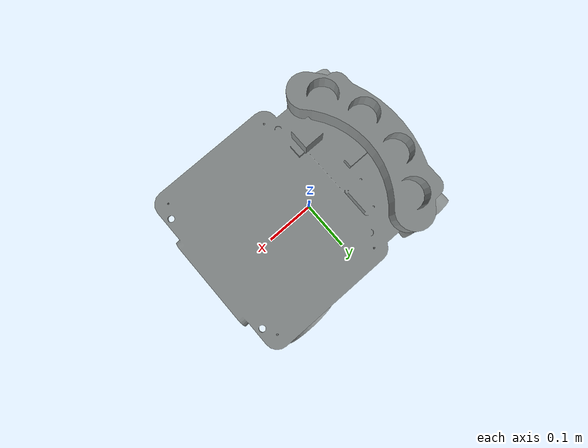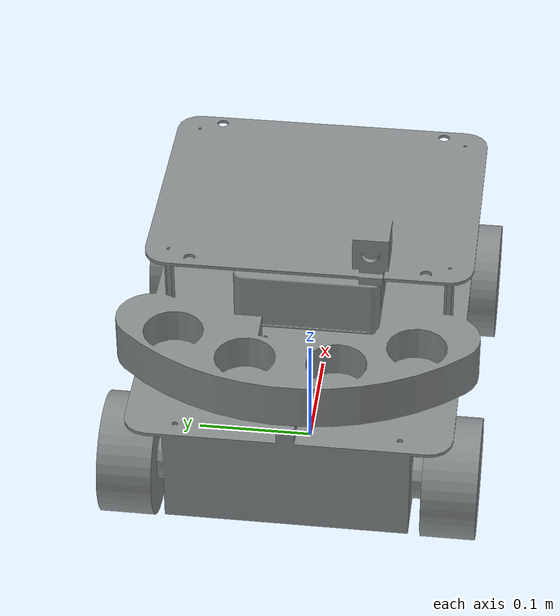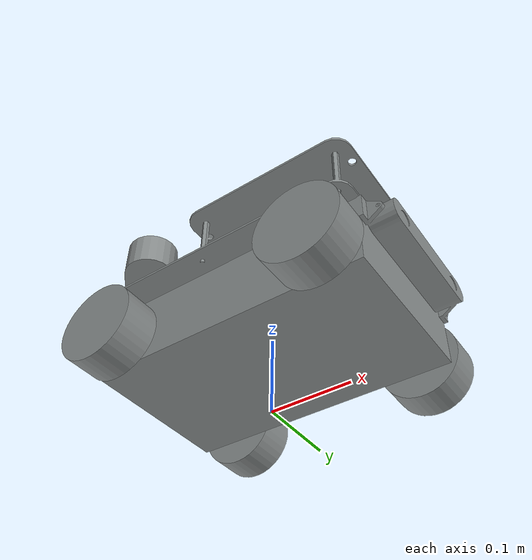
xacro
<?xml version="1.0" encoding="utf-8"?>
<robot
  name="car_model" xmlns:xacro="http://www.ros.org/wiki/xacro" >
  <link name="base_footprint">
	<visual>
		<geometry>
			<sphere radius="0.001" />
		</geometry>
		<origin xyz="0.0 0.0 0" rpy="0 0 0" />
	</visual>
  </link>

  <joint name="link2footprint" type="fixed">
	<parent link="base_footprint" />
	<child link="base_link" />
	<origin xyz="0.0 0.0 0.0565" rpy="0 0 0" />
  </joint>
  <link
    name="base_link">
    <inertial>
      <origin
        xyz="0.032701 0.0033123 0.087731"
        rpy="0 0 0" />
      <mass
        value="16.728" />
      <inertia
        ixx="0.063487"
        ixy="3.2655E-06"
        ixz="-4.8772E-06"
        iyy="0.10542"
        iyz="-3.5205E-06"
        izz="0.15785" />
    </inertial>
    <visual>
      <origin
        xyz="0 0 0"
        rpy="0 0 0" />
      <geometry>
        <mesh
          filename="package://car_model/meshes/base_link.STL" />
      </geometry>
      <material
        name="">
        <color
          rgba="0.52941 0.54902 0.54902 1" />
      </material>
    </visual>
    <collision>
      <origin
        xyz="0 0 0"
        rpy="0 0 0" />
      <geometry>
        <mesh
          filename="package://car_model/meshes/base_link.STL" />
      </geometry>
    </collision>
  </link>
  <link
    name="wheel_lf_Link">
    <inertial>
      <origin
        xyz="-1.3878E-16 -0.02275 1.0408E-16"
        rpy="0 0 0" />
      <mass
        value="2.8773" />
      <inertia
        ixx="0.0023527"
        ixy="1.0208E-17"
        ixz="2.3485E-21"
        iyy="0.0037126"
        iyz="-4.7478E-18"
        izz="0.0023527" />
    </inertial>
    <visual>
      <origin
        xyz="0 0 0"
        rpy="0 0 0" />
      <geometry>
        <mesh
          filename="package://car_model/meshes/wheel_lf_Link.STL" />
      </geometry>
      <material
        name="">
        <color
          rgba="0.52941 0.54902 0.54902 1" />
      </material>
    </visual>
    <collision>
      <origin
        xyz="0 0 0"
        rpy="0 0 0" />
      <geometry>
        <mesh
          filename="package://car_model/meshes/wheel_lf_Link.STL" />
      </geometry>
    </collision>
  </link>
  <joint
    name="wheel_lf_joint"
    type="continuous">
    <origin
      xyz="0.134 0.15675 0.0278"
      rpy="0 0 0" />
    <parent
      link="base_link" />
    <child
      link="wheel_lf_Link" />
    <axis
      xyz="0 -1 0" />
  </joint>
  <link
    name="wheel_rf_Link">
    <inertial>
      <origin
        xyz="1.1102E-16 0.02275 -6.245E-17"
        rpy="0 0 0" />
      <mass
        value="2.8773" />
      <inertia
        ixx="0.0023527"
        ixy="1.0128E-17"
        ixz="-3.5357E-32"
        iyy="0.0037126"
        iyz="-4.7481E-18"
        izz="0.0023527" />
    </inertial>
    <visual>
      <origin
        xyz="0 0 0"
        rpy="0 0 0" />
      <geometry>
        <mesh
          filename="package://car_model/meshes/wheel_rf_Link.STL" />
      </geometry>
      <material
        name="">
        <color
          rgba="0.52941 0.54902 0.54902 1" />
      </material>
    </visual>
    <collision>
      <origin
        xyz="0 0 0"
        rpy="0 0 0" />
      <geometry>
        <mesh
          filename="package://car_model/meshes/wheel_rf_Link.STL" />
      </geometry>
    </collision>
  </link>
  <joint
    name="wheel_rf_joint"
    type="continuous">
    <origin
      xyz="0.134 -0.15675 0.0278"
      rpy="0 0 0" />
    <parent
      link="base_link" />
    <child
      link="wheel_rf_Link" />
    <axis
      xyz="0 -1 0" />
  </joint>
  <link
    name="wheel_lb_Link">
    <inertial>
      <origin
        xyz="-1.6653E-16 -0.02275 1.1102E-16"
        rpy="0 0 0" />
      <mass
        value="2.8773" />
      <inertia
        ixx="0.0023527"
        ixy="1.0128E-17"
        ixz="-3.5376E-32"
        iyy="0.0037126"
        iyz="-4.7481E-18"
        izz="0.0023527" />
    </inertial>
    <visual>
      <origin
        xyz="0 0 0"
        rpy="0 0 0" />
      <geometry>
        <mesh
          filename="package://car_model/meshes/wheel_lb_Link.STL" />
      </geometry>
      <material
        name="">
        <color
          rgba="0.52941 0.54902 0.54902 1" />
      </material>
    </visual>
    <collision>
      <origin
        xyz="0 0 0"
        rpy="0 0 0" />
      <geometry>
        <mesh
          filename="package://car_model/meshes/wheel_lb_Link.STL" />
      </geometry>
    </collision>
  </link>
  <joint
    name="wheel_lb_joint"
    type="continuous">
    <origin
      xyz="-0.134 0.15675 0.0278"
      rpy="0 0 0" />
    <parent
      link="base_link" />
    <child
      link="wheel_lb_Link" />
    <axis
      xyz="0 -1 0" />
  </joint>
  <link
    name="wheel_rb_Link">
    <inertial>
      <origin
        xyz="1.3878E-16 0.02275 -6.245E-17"
        rpy="0 0 0" />
      <mass
        value="2.8773" />
      <inertia
        ixx="0.0023527"
        ixy="1.0128E-17"
        ixz="-3.5357E-32"
        iyy="0.0037126"
        iyz="-4.7481E-18"
        izz="0.0023527" />
    </inertial>
    <visual>
      <origin
        xyz="0 0 0"
        rpy="0 0 0" />
      <geometry>
        <mesh
          filename="package://car_model/meshes/wheel_rb_Link.STL" />
      </geometry>
      <material
        name="">
        <color
          rgba="0.52941 0.54902 0.54902 1" />
      </material>
    </visual>
    <collision>
      <origin
        xyz="0 0 0"
        rpy="0 0 0" />
      <geometry>
        <mesh
          filename="package://car_model/meshes/wheel_rb_Link.STL" />
      </geometry>
    </collision>
  </link>
  <joint
    name="wheel_rb_joint"
    type="continuous">
    <origin
      xyz="-0.134 -0.15675 0.0278"
      rpy="0 0 0" />
    <parent
      link="base_link" />
    <child
      link="wheel_rb_Link" />
    <axis
      xyz="0 -1 0" />
  </joint>
</robot>
